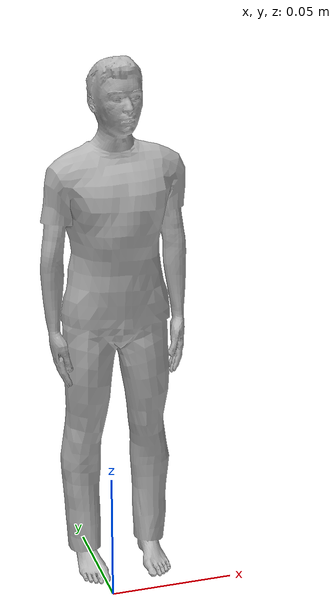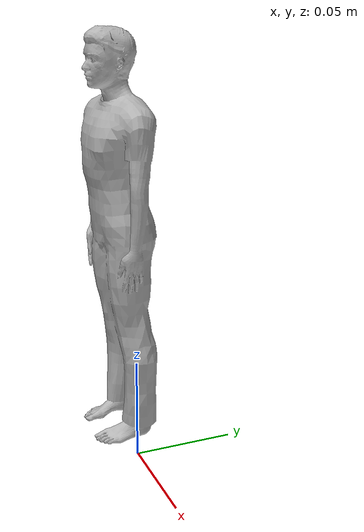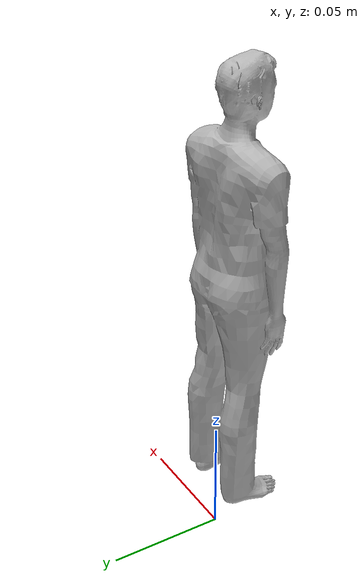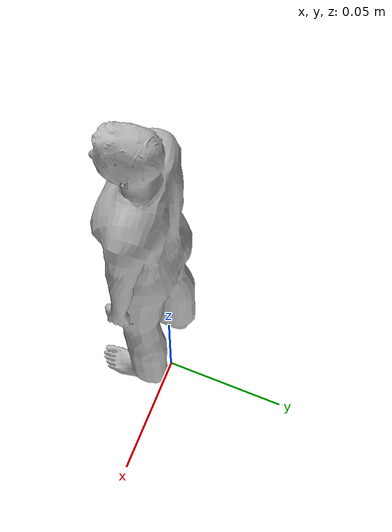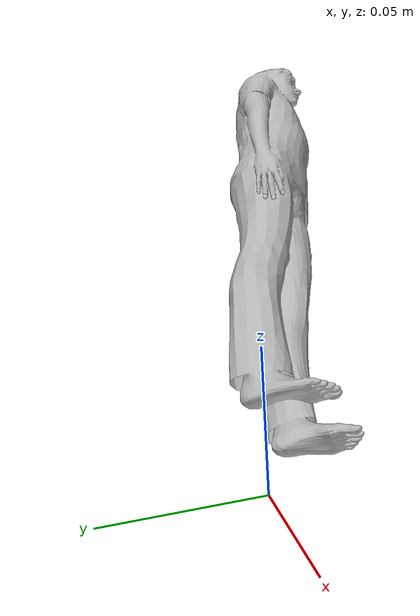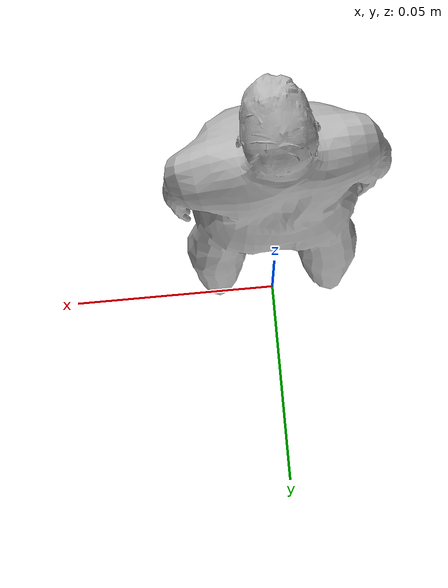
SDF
<?xml version="1.0" ?>
<sdf version="1.5">
  <model name="person_standing">
    <link name="link">
      <inertial>
        <pose>0 -0.01 0.095 0 0 0</pose>
        <mass>8.0</mass>
        <inertia>
          <ixx>2.488</ixx>
          <ixy>0</ixy>
          <ixz>0</ixz>
          <iyy>2.573</iyy>
          <iyz>0</iyz>
          <izz>0.248</izz>
        </inertia>
      </inertial>

      <collision name="bottom">
        <pose>0 0 0.001 0 0 0</pose>
        <geometry>
          <box>
            <size>0.035 0.075 0.002</size>
          </box>
        </geometry>
      </collision>

      <collision name="person">
        <pose>0 0 0.02 0.04 0 0</pose>
        <geometry>
          <mesh>
            <uri>model://person_standing/meshes/standing.dae</uri>
            <scale>0.1 0.1 0.1</scale>
          </mesh>
        </geometry>
      </collision>

      <visual name="visual">
        <pose>0 0 0.02 0.04 0 0</pose>
        <geometry>
          <mesh>
            <uri>model://person_standing/meshes/standing.dae</uri>
            <scale>0.1 0.1 0.1</scale>
          </mesh>
        </geometry>
      </visual>
    </link>
  </model>
</sdf>
